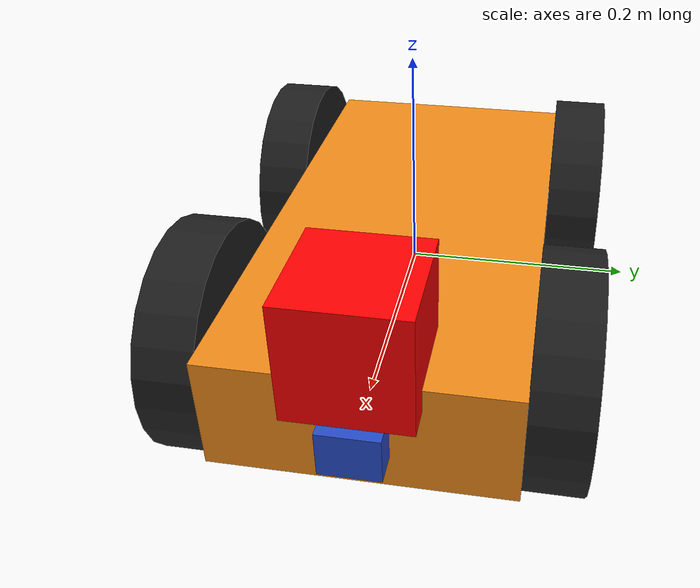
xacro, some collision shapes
<?xml version="1.0" ?>
<robot name="Robo4" xmlns:xacro="http://www.ros.org/wiki/xacro">

  <xacro:include filename="$(find my_robot)/urdf/my_robot.gazebo" />

  <link name="robot_footprint"/>

<joint name="robot_footprint_chassis" type="fixed">
  <origin xyz="0 0 0" rpy="0 0 0" />
  <parent link="robot_footprint"/>
  <child link="chassis"/>
</joint>

  <link name="chassis">
    <pose>0 0 0.2 0 0 0</pose>
    <inertial>
      <mass value="15"/>
      <origin rpy="0 0 0" xyz="0 0 0"/>
      <inertia
       ixx="0.1" ixy="0" ixz="0"
       iyy="0.1" iyz="0"
       izz="0.1"/>
    </inertial>
    <collision name="collision">
      <origin rpy="0 0 0" xyz="0 0 0"/>
      <geometry>
        <box size="0.50 0.25 0.1"/>
      </geometry>
    </collision>
    <visual>
      <origin rpy="0 0 0" xyz="0 0 0"/>
      <geometry>
        <box size="0.50 0.25 0.1"/>
      </geometry>
    </visual>
  </link>
  <gazebo reference="chassis">
      <material>Gazebo/Orange</material>
  </gazebo>

  <joint name="left_front" type="continuous">
    <parent link="chassis"/>
    <child link="left_wheel"/>
    <origin xyz="0.15 0.15 0.0" rpy="0 0 0"/>
    <axis xyz="0 1 0"/>
    <limit effort="10000" velocity="1000"/>
    <dynamics damping="1.0" friction="1.0"/>
  </joint>

  <joint name="right_front" type="continuous">
    <parent link="chassis"/>
    <child link="right_wheel"/>
    <origin xyz="0.15 -0.15 0.0" rpy="0 0 0"/>
    <axis xyz="0 1 0"/>
    <limit effort="10000" velocity="1000"/>
    <dynamics damping="1.0" friction="1.0"/>
  </joint>

  <joint name="left_rear" type="continuous">
    <parent link="chassis"/>
    <child link="left_rear"/>
    <origin xyz="-0.15 0.15 0.0" rpy="0 0 0"/>
    <axis xyz="0 1 0"/>
    <limit effort="10000" velocity="1000"/>
    <dynamics damping="1.0" friction="1.0"/>
  </joint>

  <joint name="right_rear" type="continuous">
    <parent link="chassis"/>
    <child link="right_rear"/>
    <origin xyz="-0.15 -0.15 0.0" rpy="0 0 0"/>
    <axis xyz="0 1 0"/>
    <limit effort="10000" velocity="1000"/>
    <dynamics damping="1.0" friction="1.0"/>
  </joint>

  <link name="left_wheel">
    <inertial>
      <mass value="1"/>
      <origin xyz="0.0 0 0" rpy=" 0 1.5707 1.5707"/>
      <inertia
       ixx="0.1" ixy="0" ixz="0"
       iyy="0.1" iyz="0"
       izz="0.1"/>
    </inertial>
    <collision name="collision">
      <origin xyz="0.0 0 0" rpy=" 0 1.5707 1.5707"/>
      <geometry>
        <cylinder length="0.05" radius="0.1"/>
      </geometry>
    </collision>
    <visual>
      <origin xyz="0.0 0 0" rpy=" 0 1.5707 1.5707"/>
      <geometry>
        <cylinder length="0.05" radius="0.1"/>
      </geometry>
    </visual>
  </link>
  <gazebo reference="left_wheel">
      <material>Gazebo/Black</material>
  </gazebo>

  <link name="right_wheel">
    <inertial>
      <mass value="1"/>
      <origin xyz="0.0 0 0" rpy=" 0 1.5707 1.5707"/>
      <inertia
       ixx="0.1" ixy="0" ixz="0"
       iyy="0.1" iyz="0"
       izz="0.1"/>
    </inertial>
    <collision name="collision">
      <origin xyz="0.0 0 0" rpy=" 0 1.5707 1.5707"/>
      <geometry>
        <cylinder length="0.05" radius="0.1"/>
      </geometry>
    </collision>
    <visual>
      <origin xyz="0.0 0 0" rpy=" 0 1.5707 1.5707"/>
      <geometry>
        <cylinder length="0.05" radius="0.1"/>
      </geometry>
    </visual>
  </link>
  <gazebo reference="right_wheel">
      <material>Gazebo/Black</material>
  </gazebo>

  <link name="left_rear">
    <inertial>
      <mass value="1"/>
      <origin xyz="0.0 0 0" rpy=" 0 1.5707 1.5707"/>
      <inertia
       ixx="0.1" ixy="0" ixz="0"
       iyy="0.1" iyz="0"
       izz="0.1"/>
    </inertial>
    <collision name="collision">
      <origin xyz="0.0 0 0" rpy=" 0 1.5707 1.5707"/>
      <geometry>
        <cylinder length="0.05" radius="0.1"/>
      </geometry>
    </collision>
    <visual>
      <origin xyz="0.0 0 0" rpy=" 0 1.5707 1.5707"/>
      <geometry>
        <cylinder length="0.05" radius="0.1"/>
      </geometry>
    </visual>
  </link>
  <gazebo reference="left_rear">
      <material>Gazebo/Black</material>
  </gazebo>

  <link name="right_rear">
    <inertial>
      <mass value="1"/>
      <origin xyz="0.0 0 0" rpy=" 0 1.5707 1.5707"/>
      <inertia
       ixx="0.1" ixy="0" ixz="0"
       iyy="0.1" iyz="0"
       izz="0.1"/>
    </inertial>
    <collision name="collision">
      <origin xyz="0.0 0 0" rpy=" 0 1.5707 1.5707"/>
      <geometry>
        <cylinder length="0.05" radius="0.1"/>
      </geometry>
    </collision>
    <visual>
      <origin xyz="0.0 0 0" rpy=" 0 1.5707 1.5707"/>
      <geometry>
        <cylinder length="0.05" radius="0.1"/>
      </geometry>
    </visual>
  </link>
  <gazebo reference="right_rear">
      <material>Gazebo/Black</material>
  </gazebo>

  <link name="camera">
    <inertial>
      <origin xyz="0.0 0.0 0.0" rpy="0.0 0.0 0.0"/>
      <mass value="0.1"/>
      <inertia ixx="1e-6" ixy="0" ixz="0" iyy="1e-6" iyz="0" izz="1e-6"/>
    </inertial>
    <visual name="camera_visual">
      <origin xyz="0.0 0.0 0.0" rpy="0.0 0.0 0.0"/>
      <geometry>
        <box size="0.05 0.05 0.04"/>
      </geometry>
    </visual>
    <collision name="camera_collision">
      <origin xyz="0.0 0.0 0.0" rpy="0.0 0.0 0.0"/>
      <geometry>
        <box size="0.05 0.05 0.04"/>
      </geometry>
    </collision>
  </link>

  <joint name="camera_joint" type="fixed">
    <origin xyz="0.25 0.0 0.0" rpy="0.0 0.0 0.0"/>
    <child link="camera"/>
    <parent link="chassis"/>
    <axis xyz="0 1 0" rpy="0 0 0"/>
  </joint>

  <joint name="hokuyo_joint" type="fixed">
    <origin xyz="0.225 0.0 0.08" rpy="0.0 0.0 0.0"/>
    <parent link="chassis"/>
    <child link="hokuyo"/>
    <axis xyz="0 1 0"/>
  </joint>

  <link name="hokuyo">
    <inertial>
      <origin xyz="0.0 0.0 0.0" rpy="0.0 0.0 0.0"/>
      <mass value="1e-5"/>
      <inertia ixx="1e-6" ixy="0" ixz="0" iyy="1e-6" iyz="0" izz="1e-6"/>
    </inertial>

    <visual name="hokuyo_visual">
      <origin xyz="0.0 0.0 0.0" rpy="0.0 0.0 0.0"/>
      <geometry>
        <mesh filename="package://my_robot/meshes/hokuyo.dae"/>
      </geometry>
      <material name="">
        <color rgba="1.0 0.0 0.0 1.0"/>
        <texture filename=""/>
      </material>
    </visual>

    <collision name="hokuyo_collision">
      <origin xyz="0.0 0.0 0.0" rpy="0.0 0.0 0.0"/>
      <geometry>
        <box size="0.1 0.1 0.1"/>
      </geometry>
    </collision>
  </link>

  <gazebo reference="camera">
      <material>Gazebo/Blue</material>
  </gazebo>

</robot>
